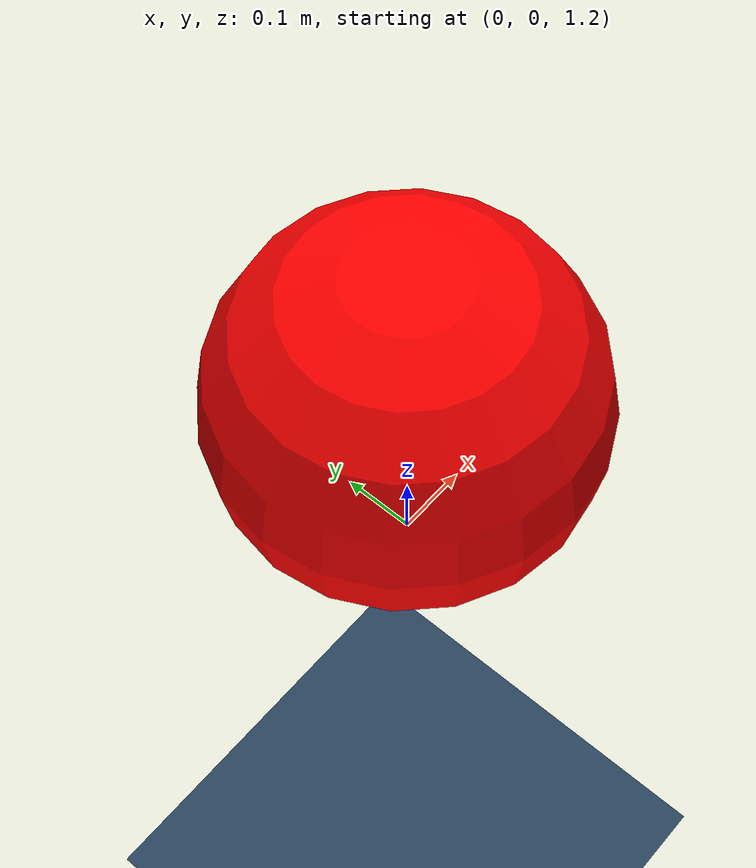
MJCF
<mujoco model="ball">
    <option timestep="0.01" integrator="RK4" gravity="0 0 -9.81"/>
    <visual>
        <rgba haze="0.15 0.25 0.35 1" />
        <global offwidth="1920" offheight="1080" elevation="-20" azimuth="120"/>
    </visual>
    <statistic center="0 0 0.7"/>

    <asset>
        <texture type="skybox" builtin="gradient" rgb1="0.4 0.6 0.8" rgb2="0 0 0" width="32" height="512"/>
        <texture name="grid" type="2d" builtin="checker" rgb1="0.2 0.3 0.4" rgb2="0.1 0.2 0.3" width="512" height="512"/>
        <material name="grid" texture="grid" texrepeat="1 1" texuniform="true" reflectance="0.2"/>
    </asset>

    <default>
        <default class="body">
            <geom type="sphere"/>
        </default>
    </default>

    <worldbody>
        <geom name="floor" size="0 0 0.05" type="plane" material="grid" condim="3"/>
        <light name="spotlight" mode="targetbodycom" target="body" diffuse="0.8 0.8 0.8" specular="0.3 0.3 0.3" pos="0 -6 4" cutoff="30"/>
        <body name="body" pos="0 0 1.5" childclass="body">
            <freejoint name="root"/>
            <geom name="body" size="0.25" rgba="1 0 0 1"/>
        </body>
    </worldbody>

</mujoco>
